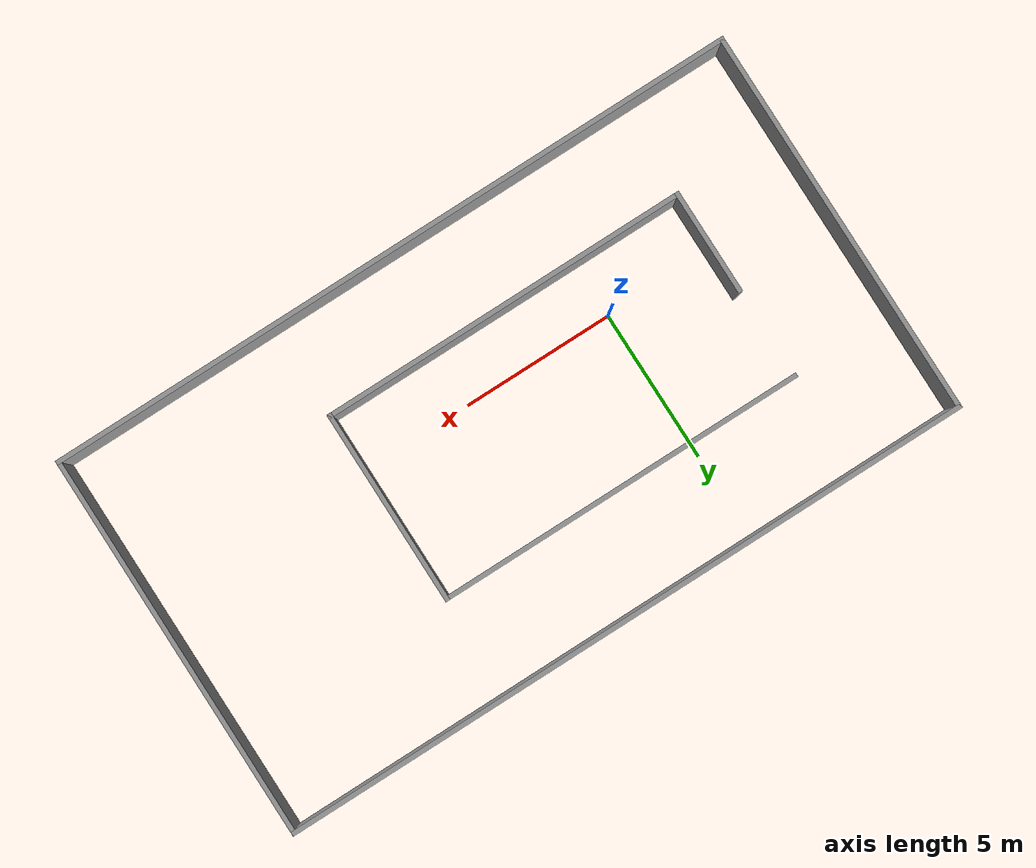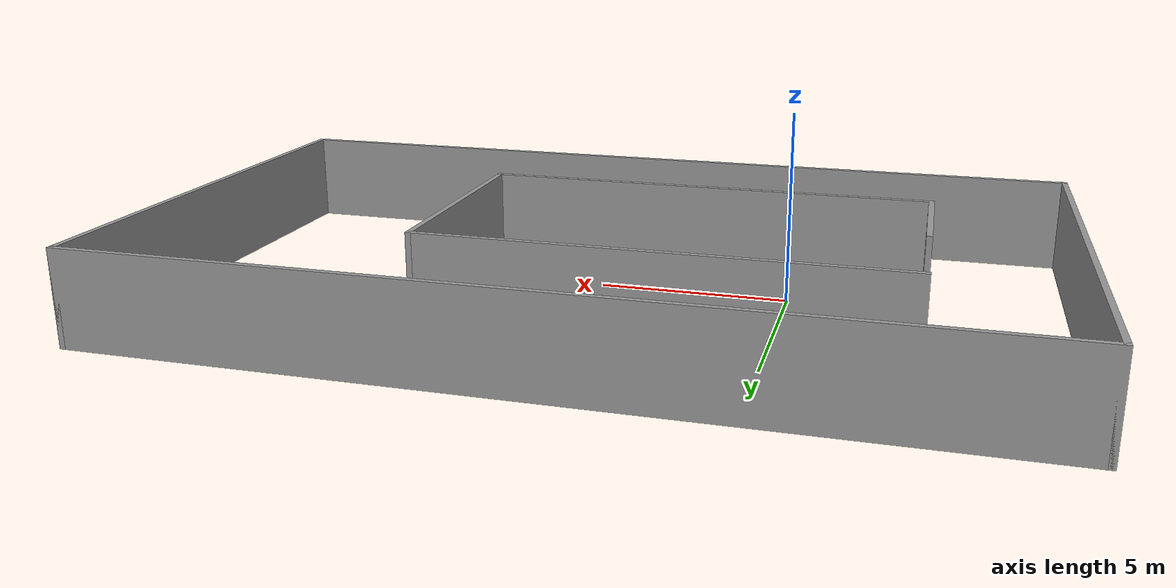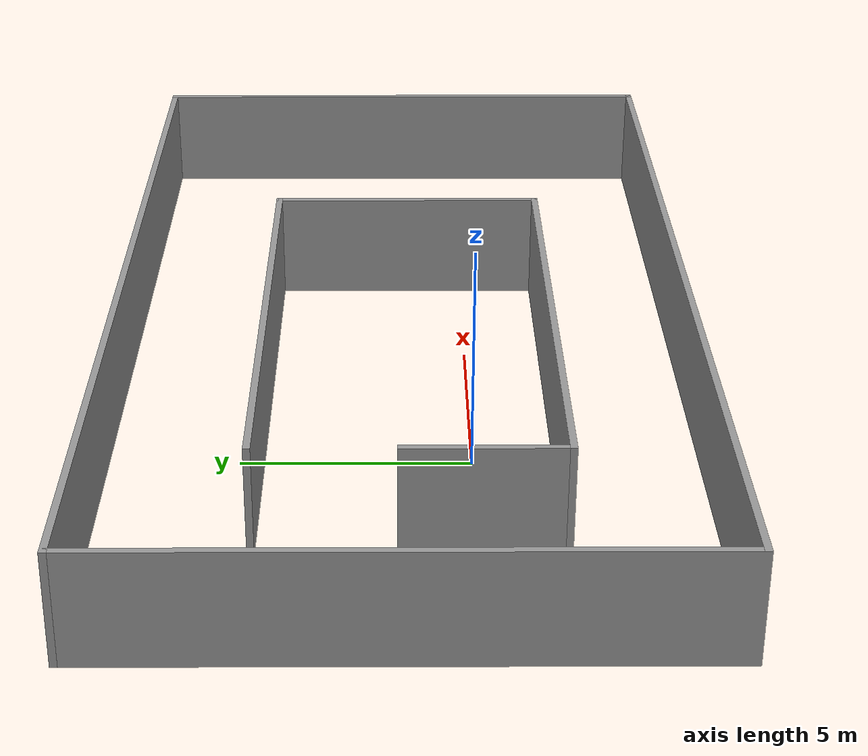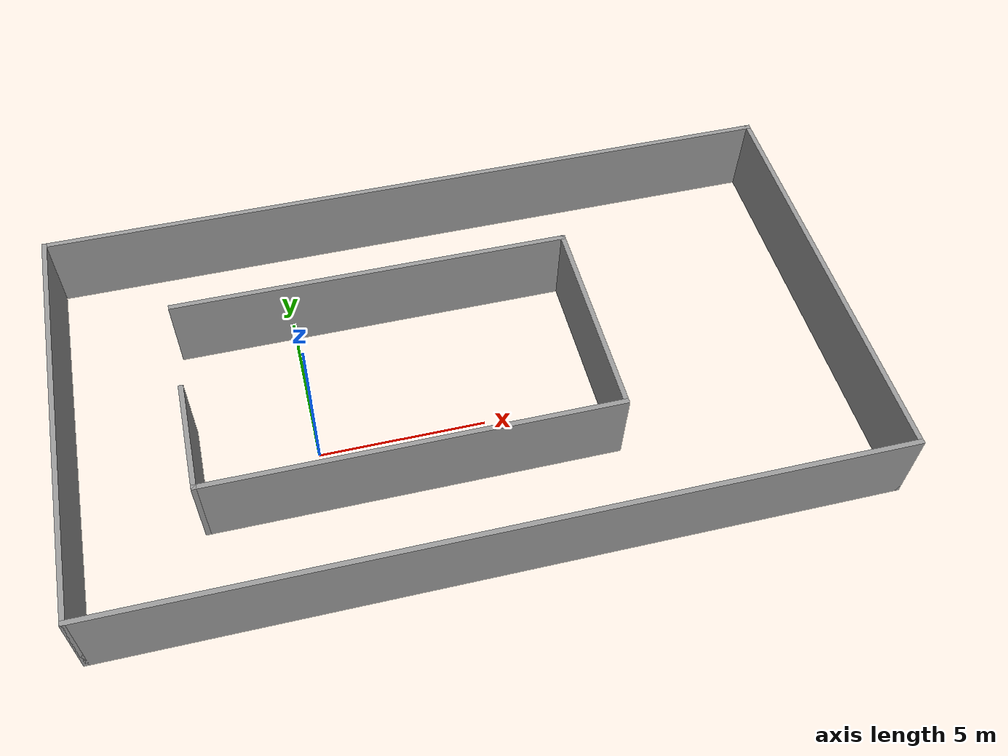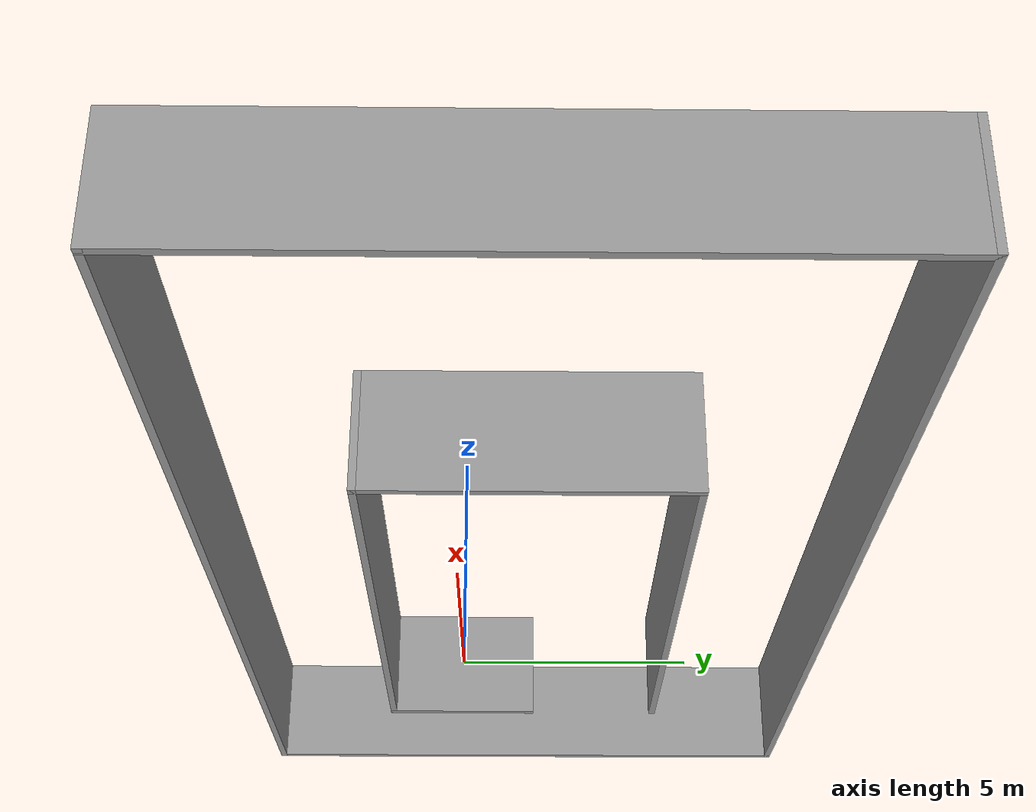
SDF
<?xml version='1.0'?>
<sdf version='1.7'>
  <model name='box_house'>
    <pose>4.4734 1.46349 0 0 -0 0</pose>
    <link name='Wall_1'>
      <collision name='Wall_1_Collision'>
        <geometry>
          <box>
            <size>13 0.15 2.5</size>
          </box>
        </geometry>
        <pose>0 0 1.25 0 -0 0</pose>
      </collision>
      <visual name='Wall_1_Visual'>
        <pose>0 0 1.25 0 -0 0</pose>
        <geometry>
          <box>
            <size>13 0.15 2.5</size>
          </box>
        </geometry>
        <material>
          <script>
            <uri>file://media/materials/scripts/gazebo.material</uri>
            <name>Gazebo/Grey</name>
          </script>
          <ambient>1 1 1 1</ambient>
        </material>
        <meta>
          <layer>0</layer>
        </meta>
      </visual>
      <pose>-11.5447 -0 0 0 -0 -1.5708</pose>
    </link>
    <link name='Wall_12'>
      <collision name='Wall_12_Collision'>
        <geometry>
          <box>
            <size>6.5 0.15 2.5</size>
          </box>
        </geometry>
        <pose>0 0 1.25 0 -0 0</pose>
      </collision>
      <visual name='Wall_12_Visual'>
        <pose>0 0 1.25 0 -0 0</pose>
        <geometry>
          <box>
            <size>6.5 0.15 2.5</size>
          </box>
        </geometry>
        <material>
          <script>
            <uri>file://media/materials/scripts/gazebo.material</uri>
            <name>Gazebo/Grey</name>
          </script>
          <ambient>1 1 1 1</ambient>
        </material>
        <meta>
          <layer>0</layer>
        </meta>
      </visual>
      <pose>4.12492 -0.103088 0 0 -0 -1.5708</pose>
    </link>
    <link name='Wall_13'>
      <collision name='Wall_13_Collision'>
        <geometry>
          <box>
            <size>12.25 0.15 2.5</size>
          </box>
        </geometry>
        <pose>0 0 1.25 0 -0 0</pose>
      </collision>
      <visual name='Wall_13_Visual'>
        <pose>0 0 1.25 0 -0 0</pose>
        <geometry>
          <box>
            <size>12.25 0.15 2.5</size>
          </box>
        </geometry>
        <material>
          <script>
            <uri>file://media/materials/scripts/gazebo.material</uri>
            <name>Gazebo/Grey</name>
          </script>
          <ambient>1 1 1 1</ambient>
        </material>
        <meta>
          <layer>0</layer>
        </meta>
      </visual>
      <pose>-1.92508 -3.27809 0 0 -0 3.14159</pose>
    </link>
    <link name='Wall_14'>
      <collision name='Wall_14_Collision'>
        <geometry>
          <box>
            <size>3.5 0.15 2.5</size>
          </box>
        </geometry>
        <pose>0 0 1.25 0 -0 0</pose>
      </collision>
      <visual name='Wall_14_Visual'>
        <pose>0 0 1.25 0 -0 0</pose>
        <geometry>
          <box>
            <size>3.5 0.15 2.5</size>
          </box>
        </geometry>
        <material>
          <script>
            <uri>file://media/materials/scripts/gazebo.material</uri>
            <name>Gazebo/Grey</name>
          </script>
          <ambient>1 1 1 1</ambient>
        </material>
        <meta>
          <layer>0</layer>
        </meta>
      </visual>
      <pose>-7.97508 -1.60309 0 0 -0 1.5708</pose>
    </link>
    <link name='Wall_2'>
      <collision name='Wall_2_Collision'>
        <geometry>
          <box>
            <size>23.2394 0.15 2.5</size>
          </box>
        </geometry>
        <pose>0 0 1.25 0 -0 0</pose>
      </collision>
      <visual name='Wall_2_Visual'>
        <pose>0 0 1.25 0 -0 0</pose>
        <geometry>
          <box>
            <size>23.2394 0.15 2.5</size>
          </box>
        </geometry>
        <material>
          <script>
            <uri>file://media/materials/scripts/gazebo.material</uri>
            <name>Gazebo/Grey</name>
          </script>
          <ambient>1 1 1 1</ambient>
        </material>
        <meta>
          <layer>0</layer>
        </meta>
      </visual>
      <pose>-0 -6.425 0 0 -0 0</pose>
    </link>
    <link name='Wall_3'>
      <collision name='Wall_3_Collision'>
        <geometry>
          <box>
            <size>13 0.15 2.5</size>
          </box>
        </geometry>
        <pose>0 0 1.25 0 -0 0</pose>
      </collision>
      <visual name='Wall_3_Visual'>
        <pose>0 0 1.25 0 -0 0</pose>
        <geometry>
          <box>
            <size>13 0.15 2.5</size>
          </box>
        </geometry>
        <material>
          <script>
            <uri>file://media/materials/scripts/gazebo.material</uri>
            <name>Gazebo/Grey</name>
          </script>
          <ambient>1 1 1 1</ambient>
        </material>
        <meta>
          <layer>0</layer>
        </meta>
      </visual>
      <pose>11.5447 -0 0 0 -0 1.5708</pose>
    </link>
    <link name='Wall_6'>
      <collision name='Wall_6_Collision'>
        <geometry>
          <box>
            <size>23.2394 0.15 2.5</size>
          </box>
        </geometry>
        <pose>0 0 1.25 0 -0 0</pose>
      </collision>
      <visual name='Wall_6_Visual'>
        <pose>0 0 1.25 0 -0 0</pose>
        <geometry>
          <box>
            <size>23.2394 0.15 2.5</size>
          </box>
        </geometry>
        <material>
          <script>
            <uri>file://media/materials/scripts/gazebo.material</uri>
            <name>Gazebo/Grey</name>
          </script>
          <ambient>1 1 1 1</ambient>
        </material>
        <meta>
          <layer>0</layer>
        </meta>
      </visual>
      <pose>-0 6.425 0 0 -0 0</pose>
    </link>
    <link name='Wall_8'>
      <collision name='Wall_8_Collision'>
        <geometry>
          <box>
            <size>12.25 0.15 2.5</size>
          </box>
        </geometry>
        <pose>0 0 1.25 0 -0 0</pose>
      </collision>
      <visual name='Wall_8_Visual'>
        <pose>0 0 1.25 0 -0 0</pose>
        <geometry>
          <box>
            <size>12.25 0.15 2.5</size>
          </box>
        </geometry>
        <material>
          <script>
            <uri>file://media/materials/scripts/gazebo.material</uri>
            <name>Gazebo/Grey</name>
          </script>
          <ambient>1 1 1 1</ambient>
        </material>
        <meta>
          <layer>0</layer>
        </meta>
      </visual>
      <pose>-1.92508 3.07191 0 0 -0 0</pose>
    </link>
    <static>1</static>
  </model>
</sdf>
